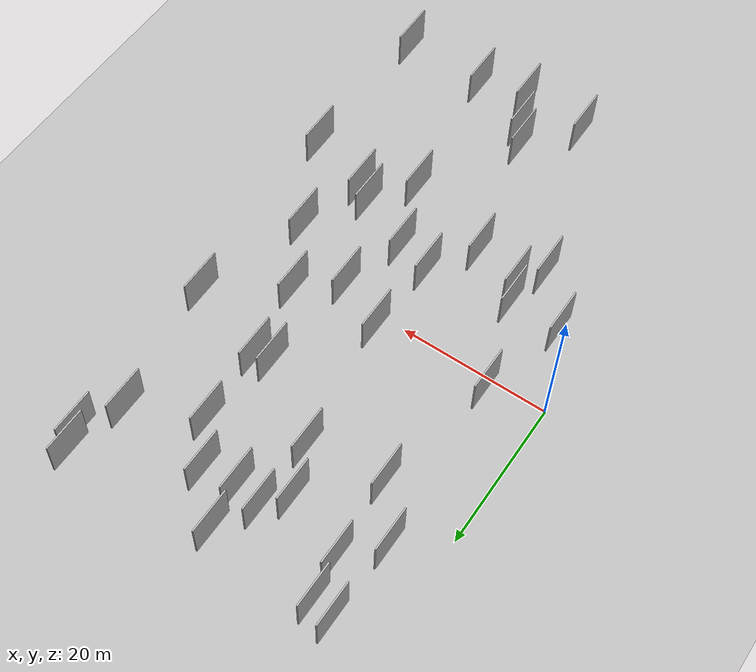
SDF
<?xml version="1.0" encoding="utf-8"?>

<sdf version="1.6">

   <world name="default">

      <gui fullscreen="0">

         <camera name="user_camera">

            <pose>-15 0 4.57585 0 0 0</pose>

            <view_controller>orbit</view_controller>

         </camera>

      </gui>

      <scene>

         <sky>

           <clouds>

             <speed>12</speed>

           </clouds>

         </sky>

         <ambient>0.4 0.4 0.4 1</ambient>

         <background>0.7 0.7 0.7 1</background>

         <shadows>1</shadows>

      </scene>

      <gravity>0 0 -9.8066</gravity>

      <magnetic_field>6e-06 2.3e-05 -4.2e-05</magnetic_field>

      <physics default="0" name="default_physics" type="ode">

         <ode>

            <solver>

               <type>quick</type>

               <iters>10</iters>

               <sor>1.0</sor>

               <use_dynamic_moi_rescaling>0</use_dynamic_moi_rescaling>

            </solver>

            <constraints>

               <cfm>0</cfm>

               <erp>0.2</erp>

               <contact_max_correcting_vel>100</contact_max_correcting_vel>

               <contact_surface_layer>0.001</contact_surface_layer>

            </constraints>

         </ode>

         <max_step_size>0.004</max_step_size>

         <real_time_factor>1</real_time_factor>

         <real_time_update_rate>250</real_time_update_rate>

      </physics>

      <light name="sun" type="directional">

         <cast_shadows>1</cast_shadows>

         <pose>0 0 10 0 0 0</pose>

         <diffuse>0.8 0.8 0.8 1</diffuse>

         <specular>0.2 0.2 0.2 1</specular>

         <attenuation>

            <range>1000</range>

            <constant>0.9</constant>

            <linear>0.01</linear>

            <quadratic>0.001</quadratic>

         </attenuation>

         <direction>-0.5 0.1 -0.9</direction>

      </light>

      <include>

         <name>ground_plane_1</name>

         <uri>model://HANNAS_ground_plane</uri>

         <pose>0 0 0  0 0 0</pose>

      </include>

      <include>

         <name>ground_plane_2</name>

         <uri>model://HANNAS_ground_plane</uri>

         <pose>100 0 0  0 0 0</pose>

      </include>

      <model name="HANNAS_wall_1">

         <static>1</static>

         <pose frame="">22.6917 -31.9498 0.0 0.000000 0.000000 1.570796</pose>

         <link name="link">

            <pose frame="">0 0 3.00 0 0 0</pose>

            <collision name="collision">

               <geometry>

                  <box>

                     <size>6.00 0.2 6.00</size>

                  </box>

               </geometry>

               <max_contacts>10</max_contacts>

               <surface>

                  <contact>

                     <ode/>

                  </contact>

                  <bounce/>

                  <friction>

                     <torsional>

                        <ode/>

                     </torsional>

                     <ode/>

                  </friction>

               </surface>

            </collision>

            <visual name="visual">

               <cast_shadows>0</cast_shadows>

               <geometry>

                  <box>

                     <size>6.00 0.2 6.00</size>

                  </box>

               </geometry>

               <material>

                  <script>

                     <uri>model://HANNAS_wall/materials/scripts</uri>

                     <uri>model://HANNAS_wall/materials/textures</uri>

                     <name>vrc/HANNAS_wall</name>

                  </script>

               </material>

            </visual>

            <self_collide>0</self_collide>

            <enable_wind>0</enable_wind>

            <kinematic>0</kinematic>

         </link>

      </model>

      <model name="HANNAS_wall_2">

         <static>1</static>

         <pose frame="">20.2446 29.4621 0.0 0.000000 0.000000 1.570796</pose>

         <link name="link">

            <pose frame="">0 0 3.00 0 0 0</pose>

            <collision name="collision">

               <geometry>

                  <box>

                     <size>6.00 0.2 6.00</size>

                  </box>

               </geometry>

               <max_contacts>10</max_contacts>

               <surface>

                  <contact>

                     <ode/>

                  </contact>

                  <bounce/>

                  <friction>

                     <torsional>

                        <ode/>

                     </torsional>

                     <ode/>

                  </friction>

               </surface>

            </collision>

            <visual name="visual">

               <cast_shadows>0</cast_shadows>

               <geometry>

                  <box>

                     <size>6.00 0.2 6.00</size>

                  </box>

               </geometry>

               <material>

                  <script>

                     <uri>model://HANNAS_wall/materials/scripts</uri>

                     <uri>model://HANNAS_wall/materials/textures</uri>

                     <name>vrc/HANNAS_wall</name>

                  </script>

               </material>

            </visual>

            <self_collide>0</self_collide>

            <enable_wind>0</enable_wind>

            <kinematic>0</kinematic>

         </link>

      </model>

      <model name="HANNAS_wall_3">

         <static>1</static>

         <pose frame="">44.1702 -38.2884 0.0 0.000000 0.000000 1.570796</pose>

         <link name="link">

            <pose frame="">0 0 3.00 0 0 0</pose>

            <collision name="collision">

               <geometry>

                  <box>

                     <size>6.00 0.2 6.00</size>

                  </box>

               </geometry>

               <max_contacts>10</max_contacts>

               <surface>

                  <contact>

                     <ode/>

                  </contact>

                  <bounce/>

                  <friction>

                     <torsional>

                        <ode/>

                     </torsional>

                     <ode/>

                  </friction>

               </surface>

            </collision>

            <visual name="visual">

               <cast_shadows>0</cast_shadows>

               <geometry>

                  <box>

                     <size>6.00 0.2 6.00</size>

                  </box>

               </geometry>

               <material>

                  <script>

                     <uri>model://HANNAS_wall/materials/scripts</uri>

                     <uri>model://HANNAS_wall/materials/textures</uri>

                     <name>vrc/HANNAS_wall</name>

                  </script>

               </material>

            </visual>

            <self_collide>0</self_collide>

            <enable_wind>0</enable_wind>

            <kinematic>0</kinematic>

         </link>

      </model>

      <model name="HANNAS_wall_4">

         <static>1</static>

         <pose frame="">43.6332 33.7527 0.0 0.000000 0.000000 1.570796</pose>

         <link name="link">

            <pose frame="">0 0 3.00 0 0 0</pose>

            <collision name="collision">

               <geometry>

                  <box>

                     <size>6.00 0.2 6.00</size>

                  </box>

               </geometry>

               <max_contacts>10</max_contacts>

               <surface>

                  <contact>

                     <ode/>

                  </contact>

                  <bounce/>

                  <friction>

                     <torsional>

                        <ode/>

                     </torsional>

                     <ode/>

                  </friction>

               </surface>

            </collision>

            <visual name="visual">

               <cast_shadows>0</cast_shadows>

               <geometry>

                  <box>

                     <size>6.00 0.2 6.00</size>

                  </box>

               </geometry>

               <material>

                  <script>

                     <uri>model://HANNAS_wall/materials/scripts</uri>

                     <uri>model://HANNAS_wall/materials/textures</uri>

                     <name>vrc/HANNAS_wall</name>

                  </script>

               </material>

            </visual>

            <self_collide>0</self_collide>

            <enable_wind>0</enable_wind>

            <kinematic>0</kinematic>

         </link>

      </model>

      <model name="HANNAS_wall_5">

         <static>1</static>

         <pose frame="">29.2713 -0.7865 0.0 0.000000 0.000000 1.570796</pose>

         <link name="link">

            <pose frame="">0 0 3.00 0 0 0</pose>

            <collision name="collision">

               <geometry>

                  <box>

                     <size>6.00 0.2 6.00</size>

                  </box>

               </geometry>

               <max_contacts>10</max_contacts>

               <surface>

                  <contact>

                     <ode/>

                  </contact>

                  <bounce/>

                  <friction>

                     <torsional>

                        <ode/>

                     </torsional>

                     <ode/>

                  </friction>

               </surface>

            </collision>

            <visual name="visual">

               <cast_shadows>0</cast_shadows>

               <geometry>

                  <box>

                     <size>6.00 0.2 6.00</size>

                  </box>

               </geometry>

               <material>

                  <script>

                     <uri>model://HANNAS_wall/materials/scripts</uri>

                     <uri>model://HANNAS_wall/materials/textures</uri>

                     <name>vrc/HANNAS_wall</name>

                  </script>

               </material>

            </visual>

            <self_collide>0</self_collide>

            <enable_wind>0</enable_wind>

            <kinematic>0</kinematic>

         </link>

      </model>

      <model name="HANNAS_wall_6">

         <static>1</static>

         <pose frame="">22.1243 -8.2545 0.0 0.000000 0.000000 1.570796</pose>

         <link name="link">

            <pose frame="">0 0 3.00 0 0 0</pose>

            <collision name="collision">

               <geometry>

                  <box>

                     <size>6.00 0.2 6.00</size>

                  </box>

               </geometry>

               <max_contacts>10</max_contacts>

               <surface>

                  <contact>

                     <ode/>

                  </contact>

                  <bounce/>

                  <friction>

                     <torsional>

                        <ode/>

                     </torsional>

                     <ode/>

                  </friction>

               </surface>

            </collision>

            <visual name="visual">

               <cast_shadows>0</cast_shadows>

               <geometry>

                  <box>

                     <size>6.00 0.2 6.00</size>

                  </box>

               </geometry>

               <material>

                  <script>

                     <uri>model://HANNAS_wall/materials/scripts</uri>

                     <uri>model://HANNAS_wall/materials/textures</uri>

                     <name>vrc/HANNAS_wall</name>

                  </script>

               </material>

            </visual>

            <self_collide>0</self_collide>

            <enable_wind>0</enable_wind>

            <kinematic>0</kinematic>

         </link>

      </model>

      <model name="HANNAS_wall_7">

         <static>1</static>

         <pose frame="">9.5322 29.6135 0.0 0.000000 0.000000 1.570796</pose>

         <link name="link">

            <pose frame="">0 0 3.00 0 0 0</pose>

            <collision name="collision">

               <geometry>

                  <box>

                     <size>6.00 0.2 6.00</size>

                  </box>

               </geometry>

               <max_contacts>10</max_contacts>

               <surface>

                  <contact>

                     <ode/>

                  </contact>

                  <bounce/>

                  <friction>

                     <torsional>

                        <ode/>

                     </torsional>

                     <ode/>

                  </friction>

               </surface>

            </collision>

            <visual name="visual">

               <cast_shadows>0</cast_shadows>

               <geometry>

                  <box>

                     <size>6.00 0.2 6.00</size>

                  </box>

               </geometry>

               <material>

                  <script>

                     <uri>model://HANNAS_wall/materials/scripts</uri>

                     <uri>model://HANNAS_wall/materials/textures</uri>

                     <name>vrc/HANNAS_wall</name>

                  </script>

               </material>

            </visual>

            <self_collide>0</self_collide>

            <enable_wind>0</enable_wind>

            <kinematic>0</kinematic>

         </link>

      </model>

      <model name="HANNAS_wall_8">

         <static>1</static>

         <pose frame="">23.8840 28.7918 0.0 0.000000 0.000000 1.570796</pose>

         <link name="link">

            <pose frame="">0 0 3.00 0 0 0</pose>

            <collision name="collision">

               <geometry>

                  <box>

                     <size>6.00 0.2 6.00</size>

                  </box>

               </geometry>

               <max_contacts>10</max_contacts>

               <surface>

                  <contact>

                     <ode/>

                  </contact>

                  <bounce/>

                  <friction>

                     <torsional>

                        <ode/>

                     </torsional>

                     <ode/>

                  </friction>

               </surface>

            </collision>

            <visual name="visual">

               <cast_shadows>0</cast_shadows>

               <geometry>

                  <box>

                     <size>6.00 0.2 6.00</size>

                  </box>

               </geometry>

               <material>

                  <script>

                     <uri>model://HANNAS_wall/materials/scripts</uri>

                     <uri>model://HANNAS_wall/materials/textures</uri>

                     <name>vrc/HANNAS_wall</name>

                  </script>

               </material>

            </visual>

            <self_collide>0</self_collide>

            <enable_wind>0</enable_wind>

            <kinematic>0</kinematic>

         </link>

      </model>

      <model name="HANNAS_wall_9">

         <static>1</static>

         <pose frame="">34.3132 3.4054 0.0 0.000000 0.000000 1.570796</pose>

         <link name="link">

            <pose frame="">0 0 3.00 0 0 0</pose>

            <collision name="collision">

               <geometry>

                  <box>

                     <size>6.00 0.2 6.00</size>

                  </box>

               </geometry>

               <max_contacts>10</max_contacts>

               <surface>

                  <contact>

                     <ode/>

                  </contact>

                  <bounce/>

                  <friction>

                     <torsional>

                        <ode/>

                     </torsional>

                     <ode/>

                  </friction>

               </surface>

            </collision>

            <visual name="visual">

               <cast_shadows>0</cast_shadows>

               <geometry>

                  <box>

                     <size>6.00 0.2 6.00</size>

                  </box>

               </geometry>

               <material>

                  <script>

                     <uri>model://HANNAS_wall/materials/scripts</uri>

                     <uri>model://HANNAS_wall/materials/textures</uri>

                     <name>vrc/HANNAS_wall</name>

                  </script>

               </material>

            </visual>

            <self_collide>0</self_collide>

            <enable_wind>0</enable_wind>

            <kinematic>0</kinematic>

         </link>

      </model>

      <model name="HANNAS_wall_10">

         <static>1</static>

         <pose frame="">30.1226 -18.4739 0.0 0.000000 0.000000 1.570796</pose>

         <link name="link">

            <pose frame="">0 0 3.00 0 0 0</pose>

            <collision name="collision">

               <geometry>

                  <box>

                     <size>6.00 0.2 6.00</size>

                  </box>

               </geometry>

               <max_contacts>10</max_contacts>

               <surface>

                  <contact>

                     <ode/>

                  </contact>

                  <bounce/>

                  <friction>

                     <torsional>

                        <ode/>

                     </torsional>

                     <ode/>

                  </friction>

               </surface>

            </collision>

            <visual name="visual">

               <cast_shadows>0</cast_shadows>

               <geometry>

                  <box>

                     <size>6.00 0.2 6.00</size>

                  </box>

               </geometry>

               <material>

                  <script>

                     <uri>model://HANNAS_wall/materials/scripts</uri>

                     <uri>model://HANNAS_wall/materials/textures</uri>

                     <name>vrc/HANNAS_wall</name>

                  </script>

               </material>

            </visual>

            <self_collide>0</self_collide>

            <enable_wind>0</enable_wind>

            <kinematic>0</kinematic>

         </link>

      </model>

      <model name="HANNAS_wall_11">

         <static>1</static>

         <pose frame="">28.4479 29.3044 0.0 0.000000 0.000000 1.570796</pose>

         <link name="link">

            <pose frame="">0 0 3.00 0 0 0</pose>

            <collision name="collision">

               <geometry>

                  <box>

                     <size>6.00 0.2 6.00</size>

                  </box>

               </geometry>

               <max_contacts>10</max_contacts>

               <surface>

                  <contact>

                     <ode/>

                  </contact>

                  <bounce/>

                  <friction>

                     <torsional>

                        <ode/>

                     </torsional>

                     <ode/>

                  </friction>

               </surface>

            </collision>

            <visual name="visual">

               <cast_shadows>0</cast_shadows>

               <geometry>

                  <box>

                     <size>6.00 0.2 6.00</size>

                  </box>

               </geometry>

               <material>

                  <script>

                     <uri>model://HANNAS_wall/materials/scripts</uri>

                     <uri>model://HANNAS_wall/materials/textures</uri>

                     <name>vrc/HANNAS_wall</name>

                  </script>

               </material>

            </visual>

            <self_collide>0</self_collide>

            <enable_wind>0</enable_wind>

            <kinematic>0</kinematic>

         </link>

      </model>

      <model name="HANNAS_wall_12">

         <static>1</static>

         <pose frame="">42.7984 36.0896 0.0 0.000000 0.000000 1.570796</pose>

         <link name="link">

            <pose frame="">0 0 3.00 0 0 0</pose>

            <collision name="collision">

               <geometry>

                  <box>

                     <size>6.00 0.2 6.00</size>

                  </box>

               </geometry>

               <max_contacts>10</max_contacts>

               <surface>

                  <contact>

                     <ode/>

                  </contact>

                  <bounce/>

                  <friction>

                     <torsional>

                        <ode/>

                     </torsional>

                     <ode/>

                  </friction>

               </surface>

            </collision>

            <visual name="visual">

               <cast_shadows>0</cast_shadows>

               <geometry>

                  <box>

                     <size>6.00 0.2 6.00</size>

                  </box>

               </geometry>

               <material>

                  <script>

                     <uri>model://HANNAS_wall/materials/scripts</uri>

                     <uri>model://HANNAS_wall/materials/textures</uri>

                     <name>vrc/HANNAS_wall</name>

                  </script>

               </material>

            </visual>

            <self_collide>0</self_collide>

            <enable_wind>0</enable_wind>

            <kinematic>0</kinematic>

         </link>

      </model>

      <model name="HANNAS_wall_13">

         <static>1</static>

         <pose frame="">5.8683 35.6910 0.0 0.000000 0.000000 1.570796</pose>

         <link name="link">

            <pose frame="">0 0 3.00 0 0 0</pose>

            <collision name="collision">

               <geometry>

                  <box>

                     <size>6.00 0.2 6.00</size>

                  </box>

               </geometry>

               <max_contacts>10</max_contacts>

               <surface>

                  <contact>

                     <ode/>

                  </contact>

                  <bounce/>

                  <friction>

                     <torsional>

                        <ode/>

                     </torsional>

                     <ode/>

                  </friction>

               </surface>

            </collision>

            <visual name="visual">

               <cast_shadows>0</cast_shadows>

               <geometry>

                  <box>

                     <size>6.00 0.2 6.00</size>

                  </box>

               </geometry>

               <material>

                  <script>

                     <uri>model://HANNAS_wall/materials/scripts</uri>

                     <uri>model://HANNAS_wall/materials/textures</uri>

                     <name>vrc/HANNAS_wall</name>

                  </script>

               </material>

            </visual>

            <self_collide>0</self_collide>

            <enable_wind>0</enable_wind>

            <kinematic>0</kinematic>

         </link>

      </model>

      <model name="HANNAS_wall_14">

         <static>1</static>

         <pose frame="">24.3552 -34.5578 0.0 0.000000 0.000000 1.570796</pose>

         <link name="link">

            <pose frame="">0 0 3.00 0 0 0</pose>

            <collision name="collision">

               <geometry>

                  <box>

                     <size>6.00 0.2 6.00</size>

                  </box>

               </geometry>

               <max_contacts>10</max_contacts>

               <surface>

                  <contact>

                     <ode/>

                  </contact>

                  <bounce/>

                  <friction>

                     <torsional>

                        <ode/>

                     </torsional>

                     <ode/>

                  </friction>

               </surface>

            </collision>

            <visual name="visual">

               <cast_shadows>0</cast_shadows>

               <geometry>

                  <box>

                     <size>6.00 0.2 6.00</size>

                  </box>

               </geometry>

               <material>

                  <script>

                     <uri>model://HANNAS_wall/materials/scripts</uri>

                     <uri>model://HANNAS_wall/materials/textures</uri>

                     <name>vrc/HANNAS_wall</name>

                  </script>

               </material>

            </visual>

            <self_collide>0</self_collide>

            <enable_wind>0</enable_wind>

            <kinematic>0</kinematic>

         </link>

      </model>

      <model name="HANNAS_wall_15">

         <static>1</static>

         <pose frame="">9.6066 -16.3142 0.0 0.000000 0.000000 1.570796</pose>

         <link name="link">

            <pose frame="">0 0 3.00 0 0 0</pose>

            <collision name="collision">

               <geometry>

                  <box>

                     <size>6.00 0.2 6.00</size>

                  </box>

               </geometry>

               <max_contacts>10</max_contacts>

               <surface>

                  <contact>

                     <ode/>

                  </contact>

                  <bounce/>

                  <friction>

                     <torsional>

                        <ode/>

                     </torsional>

                     <ode/>

                  </friction>

               </surface>

            </collision>

            <visual name="visual">

               <cast_shadows>0</cast_shadows>

               <geometry>

                  <box>

                     <size>6.00 0.2 6.00</size>

                  </box>

               </geometry>

               <material>

                  <script>

                     <uri>model://HANNAS_wall/materials/scripts</uri>

                     <uri>model://HANNAS_wall/materials/textures</uri>

                     <name>vrc/HANNAS_wall</name>

                  </script>

               </material>

            </visual>

            <self_collide>0</self_collide>

            <enable_wind>0</enable_wind>

            <kinematic>0</kinematic>

         </link>

      </model>

      <model name="HANNAS_wall_16">

         <static>1</static>

         <pose frame="">10.2562 18.8156 0.0 0.000000 0.000000 1.570796</pose>

         <link name="link">

            <pose frame="">0 0 3.00 0 0 0</pose>

            <collision name="collision">

               <geometry>

                  <box>

                     <size>6.00 0.2 6.00</size>

                  </box>

               </geometry>

               <max_contacts>10</max_contacts>

               <surface>

                  <contact>

                     <ode/>

                  </contact>

                  <bounce/>

                  <friction>

                     <torsional>

                        <ode/>

                     </torsional>

                     <ode/>

                  </friction>

               </surface>

            </collision>

            <visual name="visual">

               <cast_shadows>0</cast_shadows>

               <geometry>

                  <box>

                     <size>6.00 0.2 6.00</size>

                  </box>

               </geometry>

               <material>

                  <script>

                     <uri>model://HANNAS_wall/materials/scripts</uri>

                     <uri>model://HANNAS_wall/materials/textures</uri>

                     <name>vrc/HANNAS_wall</name>

                  </script>

               </material>

            </visual>

            <self_collide>0</self_collide>

            <enable_wind>0</enable_wind>

            <kinematic>0</kinematic>

         </link>

      </model>

      <model name="HANNAS_wall_17">

         <static>1</static>

         <pose frame="">40.8270 28.1139 0.0 0.000000 0.000000 1.570796</pose>

         <link name="link">

            <pose frame="">0 0 3.00 0 0 0</pose>

            <collision name="collision">

               <geometry>

                  <box>

                     <size>6.00 0.2 6.00</size>

                  </box>

               </geometry>

               <max_contacts>10</max_contacts>

               <surface>

                  <contact>

                     <ode/>

                  </contact>

                  <bounce/>

                  <friction>

                     <torsional>

                        <ode/>

                     </torsional>

                     <ode/>

                  </friction>

               </surface>

            </collision>

            <visual name="visual">

               <cast_shadows>0</cast_shadows>

               <geometry>

                  <box>

                     <size>6.00 0.2 6.00</size>

                  </box>

               </geometry>

               <material>

                  <script>

                     <uri>model://HANNAS_wall/materials/scripts</uri>

                     <uri>model://HANNAS_wall/materials/textures</uri>

                     <name>vrc/HANNAS_wall</name>

                  </script>

               </material>

            </visual>

            <self_collide>0</self_collide>

            <enable_wind>0</enable_wind>

            <kinematic>0</kinematic>

         </link>

      </model>

      <model name="HANNAS_wall_18">

         <static>1</static>

         <pose frame="">31.8973 23.8797 0.0 0.000000 0.000000 1.570796</pose>

         <link name="link">

            <pose frame="">0 0 3.00 0 0 0</pose>

            <collision name="collision">

               <geometry>

                  <box>

                     <size>6.00 0.2 6.00</size>

                  </box>

               </geometry>

               <max_contacts>10</max_contacts>

               <surface>

                  <contact>

                     <ode/>

                  </contact>

                  <bounce/>

                  <friction>

                     <torsional>

                        <ode/>

                     </torsional>

                     <ode/>

                  </friction>

               </surface>

            </collision>

            <visual name="visual">

               <cast_shadows>0</cast_shadows>

               <geometry>

                  <box>

                     <size>6.00 0.2 6.00</size>

                  </box>

               </geometry>

               <material>

                  <script>

                     <uri>model://HANNAS_wall/materials/scripts</uri>

                     <uri>model://HANNAS_wall/materials/textures</uri>

                     <name>vrc/HANNAS_wall</name>

                  </script>

               </material>

            </visual>

            <self_collide>0</self_collide>

            <enable_wind>0</enable_wind>

            <kinematic>0</kinematic>

         </link>

      </model>

      <model name="HANNAS_wall_19">

         <static>1</static>

         <pose frame="">7.3207 1.8135 0.0 0.000000 0.000000 1.570796</pose>

         <link name="link">

            <pose frame="">0 0 3.00 0 0 0</pose>

            <collision name="collision">

               <geometry>

                  <box>

                     <size>6.00 0.2 6.00</size>

                  </box>

               </geometry>

               <max_contacts>10</max_contacts>

               <surface>

                  <contact>

                     <ode/>

                  </contact>

                  <bounce/>

                  <friction>

                     <torsional>

                        <ode/>

                     </torsional>

                     <ode/>

                  </friction>

               </surface>

            </collision>

            <visual name="visual">

               <cast_shadows>0</cast_shadows>

               <geometry>

                  <box>

                     <size>6.00 0.2 6.00</size>

                  </box>

               </geometry>

               <material>

                  <script>

                     <uri>model://HANNAS_wall/materials/scripts</uri>

                     <uri>model://HANNAS_wall/materials/textures</uri>

                     <name>vrc/HANNAS_wall</name>

                  </script>

               </material>

            </visual>

            <self_collide>0</self_collide>

            <enable_wind>0</enable_wind>

            <kinematic>0</kinematic>

         </link>

      </model>

      <model name="HANNAS_wall_20">

         <static>1</static>

         <pose frame="">5.5236 25.0917 0.0 0.000000 0.000000 1.570796</pose>

         <link name="link">

            <pose frame="">0 0 3.00 0 0 0</pose>

            <collision name="collision">

               <geometry>

                  <box>

                     <size>6.00 0.2 6.00</size>

                  </box>

               </geometry>

               <max_contacts>10</max_contacts>

               <surface>

                  <contact>

                     <ode/>

                  </contact>

                  <bounce/>

                  <friction>

                     <torsional>

                        <ode/>

                     </torsional>

                     <ode/>

                  </friction>

               </surface>

            </collision>

            <visual name="visual">

               <cast_shadows>0</cast_shadows>

               <geometry>

                  <box>

                     <size>6.00 0.2 6.00</size>

                  </box>

               </geometry>

               <material>

                  <script>

                     <uri>model://HANNAS_wall/materials/scripts</uri>

                     <uri>model://HANNAS_wall/materials/textures</uri>

                     <name>vrc/HANNAS_wall</name>

                  </script>

               </material>

            </visual>

            <self_collide>0</self_collide>

            <enable_wind>0</enable_wind>

            <kinematic>0</kinematic>

         </link>

      </model>

      <model name="HANNAS_wall_21">

         <static>1</static>

         <pose frame="">17.8645 26.3139 0.0 0.000000 0.000000 1.570796</pose>

         <link name="link">

            <pose frame="">0 0 3.00 0 0 0</pose>

            <collision name="collision">

               <geometry>

                  <box>

                     <size>6.00 0.2 6.00</size>

                  </box>

               </geometry>

               <max_contacts>10</max_contacts>

               <surface>

                  <contact>

                     <ode/>

                  </contact>

                  <bounce/>

                  <friction>

                     <torsional>

                        <ode/>

                     </torsional>

                     <ode/>

                  </friction>

               </surface>

            </collision>

            <visual name="visual">

               <cast_shadows>0</cast_shadows>

               <geometry>

                  <box>

                     <size>6.00 0.2 6.00</size>

                  </box>

               </geometry>

               <material>

                  <script>

                     <uri>model://HANNAS_wall/materials/scripts</uri>

                     <uri>model://HANNAS_wall/materials/textures</uri>

                     <name>vrc/HANNAS_wall</name>

                  </script>

               </material>

            </visual>

            <self_collide>0</self_collide>

            <enable_wind>0</enable_wind>

            <kinematic>0</kinematic>

         </link>

      </model>

      <model name="HANNAS_wall_22">

         <static>1</static>

         <pose frame="">34.1734 -13.0165 0.0 0.000000 0.000000 1.570796</pose>

         <link name="link">

            <pose frame="">0 0 3.00 0 0 0</pose>

            <collision name="collision">

               <geometry>

                  <box>

                     <size>6.00 0.2 6.00</size>

                  </box>

               </geometry>

               <max_contacts>10</max_contacts>

               <surface>

                  <contact>

                     <ode/>

                  </contact>

                  <bounce/>

                  <friction>

                     <torsional>

                        <ode/>

                     </torsional>

                     <ode/>

                  </friction>

               </surface>

            </collision>

            <visual name="visual">

               <cast_shadows>0</cast_shadows>

               <geometry>

                  <box>

                     <size>6.00 0.2 6.00</size>

                  </box>

               </geometry>

               <material>

                  <script>

                     <uri>model://HANNAS_wall/materials/scripts</uri>

                     <uri>model://HANNAS_wall/materials/textures</uri>

                     <name>vrc/HANNAS_wall</name>

                  </script>

               </material>

            </visual>

            <self_collide>0</self_collide>

            <enable_wind>0</enable_wind>

            <kinematic>0</kinematic>

         </link>

      </model>

      <model name="HANNAS_wall_23">

         <static>1</static>

         <pose frame="">12.0930 -12.8128 0.0 0.000000 0.000000 1.570796</pose>

         <link name="link">

            <pose frame="">0 0 3.00 0 0 0</pose>

            <collision name="collision">

               <geometry>

                  <box>

                     <size>6.00 0.2 6.00</size>

                  </box>

               </geometry>

               <max_contacts>10</max_contacts>

               <surface>

                  <contact>

                     <ode/>

                  </contact>

                  <bounce/>

                  <friction>

                     <torsional>

                        <ode/>

                     </torsional>

                     <ode/>

                  </friction>

               </surface>

            </collision>

            <visual name="visual">

               <cast_shadows>0</cast_shadows>

               <geometry>

                  <box>

                     <size>6.00 0.2 6.00</size>

                  </box>

               </geometry>

               <material>

                  <script>

                     <uri>model://HANNAS_wall/materials/scripts</uri>

                     <uri>model://HANNAS_wall/materials/textures</uri>

                     <name>vrc/HANNAS_wall</name>

                  </script>

               </material>

            </visual>

            <self_collide>0</self_collide>

            <enable_wind>0</enable_wind>

            <kinematic>0</kinematic>

         </link>

      </model>

      <model name="HANNAS_wall_24">

         <static>1</static>

         <pose frame="">22.7495 2.2998 0.0 0.000000 0.000000 1.570796</pose>

         <link name="link">

            <pose frame="">0 0 3.00 0 0 0</pose>

            <collision name="collision">

               <geometry>

                  <box>

                     <size>6.00 0.2 6.00</size>

                  </box>

               </geometry>

               <max_contacts>10</max_contacts>

               <surface>

                  <contact>

                     <ode/>

                  </contact>

                  <bounce/>

                  <friction>

                     <torsional>

                        <ode/>

                     </torsional>

                     <ode/>

                  </friction>

               </surface>

            </collision>

            <visual name="visual">

               <cast_shadows>0</cast_shadows>

               <geometry>

                  <box>

                     <size>6.00 0.2 6.00</size>

                  </box>

               </geometry>

               <material>

                  <script>

                     <uri>model://HANNAS_wall/materials/scripts</uri>

                     <uri>model://HANNAS_wall/materials/textures</uri>

                     <name>vrc/HANNAS_wall</name>

                  </script>

               </material>

            </visual>

            <self_collide>0</self_collide>

            <enable_wind>0</enable_wind>

            <kinematic>0</kinematic>

         </link>

      </model>

      <model name="HANNAS_wall_25">

         <static>1</static>

         <pose frame="">20.2519 20.1538 0.0 0.000000 0.000000 1.570796</pose>

         <link name="link">

            <pose frame="">0 0 3.00 0 0 0</pose>

            <collision name="collision">

               <geometry>

                  <box>

                     <size>6.00 0.2 6.00</size>

                  </box>

               </geometry>

               <max_contacts>10</max_contacts>

               <surface>

                  <contact>

                     <ode/>

                  </contact>

                  <bounce/>

                  <friction>

                     <torsional>

                        <ode/>

                     </torsional>

                     <ode/>

                  </friction>

               </surface>

            </collision>

            <visual name="visual">

               <cast_shadows>0</cast_shadows>

               <geometry>

                  <box>

                     <size>6.00 0.2 6.00</size>

                  </box>

               </geometry>

               <material>

                  <script>

                     <uri>model://HANNAS_wall/materials/scripts</uri>

                     <uri>model://HANNAS_wall/materials/textures</uri>

                     <name>vrc/HANNAS_wall</name>

                  </script>

               </material>

            </visual>

            <self_collide>0</self_collide>

            <enable_wind>0</enable_wind>

            <kinematic>0</kinematic>

         </link>

      </model>

      <model name="HANNAS_wall_26">

         <static>1</static>

         <pose frame="">4.1584 -10.0280 0.0 0.000000 0.000000 1.570796</pose>

         <link name="link">

            <pose frame="">0 0 3.00 0 0 0</pose>

            <collision name="collision">

               <geometry>

                  <box>

                     <size>6.00 0.2 6.00</size>

                  </box>

               </geometry>

               <max_contacts>10</max_contacts>

               <surface>

                  <contact>

                     <ode/>

                  </contact>

                  <bounce/>

                  <friction>

                     <torsional>

                        <ode/>

                     </torsional>

                     <ode/>

                  </friction>

               </surface>

            </collision>

            <visual name="visual">

               <cast_shadows>0</cast_shadows>

               <geometry>

                  <box>

                     <size>6.00 0.2 6.00</size>

                  </box>

               </geometry>

               <material>

                  <script>

                     <uri>model://HANNAS_wall/materials/scripts</uri>

                     <uri>model://HANNAS_wall/materials/textures</uri>

                     <name>vrc/HANNAS_wall</name>

                  </script>

               </material>

            </visual>

            <self_collide>0</self_collide>

            <enable_wind>0</enable_wind>

            <kinematic>0</kinematic>

         </link>

      </model>

      <model name="HANNAS_wall_27">

         <static>1</static>

         <pose frame="">11.0273 -10.2414 0.0 0.000000 0.000000 1.570796</pose>

         <link name="link">

            <pose frame="">0 0 3.00 0 0 0</pose>

            <collision name="collision">

               <geometry>

                  <box>

                     <size>6.00 0.2 6.00</size>

                  </box>

               </geometry>

               <max_contacts>10</max_contacts>

               <surface>

                  <contact>

                     <ode/>

                  </contact>

                  <bounce/>

                  <friction>

                     <torsional>

                        <ode/>

                     </torsional>

                     <ode/>

                  </friction>

               </surface>

            </collision>

            <visual name="visual">

               <cast_shadows>0</cast_shadows>

               <geometry>

                  <box>

                     <size>6.00 0.2 6.00</size>

                  </box>

               </geometry>

               <material>

                  <script>

                     <uri>model://HANNAS_wall/materials/scripts</uri>

                     <uri>model://HANNAS_wall/materials/textures</uri>

                     <name>vrc/HANNAS_wall</name>

                  </script>

               </material>

            </visual>

            <self_collide>0</self_collide>

            <enable_wind>0</enable_wind>

            <kinematic>0</kinematic>

         </link>

      </model>

      <model name="HANNAS_wall_28">

         <static>1</static>

         <pose frame="">17.2265 -38.5190 0.0 0.000000 0.000000 1.570796</pose>

         <link name="link">

            <pose frame="">0 0 3.00 0 0 0</pose>

            <collision name="collision">

               <geometry>

                  <box>

                     <size>6.00 0.2 6.00</size>

                  </box>

               </geometry>

               <max_contacts>10</max_contacts>

               <surface>

                  <contact>

                     <ode/>

                  </contact>

                  <bounce/>

                  <friction>

                     <torsional>

                        <ode/>

                     </torsional>

                     <ode/>

                  </friction>

               </surface>

            </collision>

            <visual name="visual">

               <cast_shadows>0</cast_shadows>

               <geometry>

                  <box>

                     <size>6.00 0.2 6.00</size>

                  </box>

               </geometry>

               <material>

                  <script>

                     <uri>model://HANNAS_wall/materials/scripts</uri>

                     <uri>model://HANNAS_wall/materials/textures</uri>

                     <name>vrc/HANNAS_wall</name>

                  </script>

               </material>

            </visual>

            <self_collide>0</self_collide>

            <enable_wind>0</enable_wind>

            <kinematic>0</kinematic>

         </link>

      </model>

      <model name="HANNAS_wall_29">

         <static>1</static>

         <pose frame="">32.4649 13.7870 0.0 0.000000 0.000000 1.570796</pose>

         <link name="link">

            <pose frame="">0 0 3.00 0 0 0</pose>

            <collision name="collision">

               <geometry>

                  <box>

                     <size>6.00 0.2 6.00</size>

                  </box>

               </geometry>

               <max_contacts>10</max_contacts>

               <surface>

                  <contact>

                     <ode/>

                  </contact>

                  <bounce/>

                  <friction>

                     <torsional>

                        <ode/>

                     </torsional>

                     <ode/>

                  </friction>

               </surface>

            </collision>

            <visual name="visual">

               <cast_shadows>0</cast_shadows>

               <geometry>

                  <box>

                     <size>6.00 0.2 6.00</size>

                  </box>

               </geometry>

               <material>

                  <script>

                     <uri>model://HANNAS_wall/materials/scripts</uri>

                     <uri>model://HANNAS_wall/materials/textures</uri>

                     <name>vrc/HANNAS_wall</name>

                  </script>

               </material>

            </visual>

            <self_collide>0</self_collide>

            <enable_wind>0</enable_wind>

            <kinematic>0</kinematic>

         </link>

      </model>

      <model name="HANNAS_wall_30">

         <static>1</static>

         <pose frame="">38.8206 -5.0889 0.0 0.000000 0.000000 1.570796</pose>

         <link name="link">

            <pose frame="">0 0 3.00 0 0 0</pose>

            <collision name="collision">

               <geometry>

                  <box>

                     <size>6.00 0.2 6.00</size>

                  </box>

               </geometry>

               <max_contacts>10</max_contacts>

               <surface>

                  <contact>

                     <ode/>

                  </contact>

                  <bounce/>

                  <friction>

                     <torsional>

                        <ode/>

                     </torsional>

                     <ode/>

                  </friction>

               </surface>

            </collision>

            <visual name="visual">

               <cast_shadows>0</cast_shadows>

               <geometry>

                  <box>

                     <size>6.00 0.2 6.00</size>

                  </box>

               </geometry>

               <material>

                  <script>

                     <uri>model://HANNAS_wall/materials/scripts</uri>

                     <uri>model://HANNAS_wall/materials/textures</uri>

                     <name>vrc/HANNAS_wall</name>

                  </script>

               </material>

            </visual>

            <self_collide>0</self_collide>

            <enable_wind>0</enable_wind>

            <kinematic>0</kinematic>

         </link>

      </model>

      <model name="HANNAS_wall_31">

         <static>1</static>

         <pose frame="">30.3369 13.2092 0.0 0.000000 0.000000 1.570796</pose>

         <link name="link">

            <pose frame="">0 0 3.00 0 0 0</pose>

            <collision name="collision">

               <geometry>

                  <box>

                     <size>6.00 0.2 6.00</size>

                  </box>

               </geometry>

               <max_contacts>10</max_contacts>

               <surface>

                  <contact>

                     <ode/>

                  </contact>

                  <bounce/>

                  <friction>

                     <torsional>

                        <ode/>

                     </torsional>

                     <ode/>

                  </friction>

               </surface>

            </collision>

            <visual name="visual">

               <cast_shadows>0</cast_shadows>

               <geometry>

                  <box>

                     <size>6.00 0.2 6.00</size>

                  </box>

               </geometry>

               <material>

                  <script>

                     <uri>model://HANNAS_wall/materials/scripts</uri>

                     <uri>model://HANNAS_wall/materials/textures</uri>

                     <name>vrc/HANNAS_wall</name>

                  </script>

               </material>

            </visual>

            <self_collide>0</self_collide>

            <enable_wind>0</enable_wind>

            <kinematic>0</kinematic>

         </link>

      </model>

      <model name="HANNAS_wall_32">

         <static>1</static>

         <pose frame="">18.2982 -14.5172 0.0 0.000000 0.000000 1.570796</pose>

         <link name="link">

            <pose frame="">0 0 3.00 0 0 0</pose>

            <collision name="collision">

               <geometry>

                  <box>

                     <size>6.00 0.2 6.00</size>

                  </box>

               </geometry>

               <max_contacts>10</max_contacts>

               <surface>

                  <contact>

                     <ode/>

                  </contact>

                  <bounce/>

                  <friction>

                     <torsional>

                        <ode/>

                     </torsional>

                     <ode/>

                  </friction>

               </surface>

            </collision>

            <visual name="visual">

               <cast_shadows>0</cast_shadows>

               <geometry>

                  <box>

                     <size>6.00 0.2 6.00</size>

                  </box>

               </geometry>

               <material>

                  <script>

                     <uri>model://HANNAS_wall/materials/scripts</uri>

                     <uri>model://HANNAS_wall/materials/textures</uri>

                     <name>vrc/HANNAS_wall</name>

                  </script>

               </material>

            </visual>

            <self_collide>0</self_collide>

            <enable_wind>0</enable_wind>

            <kinematic>0</kinematic>

         </link>

      </model>

      <model name="HANNAS_wall_33">

         <static>1</static>

         <pose frame="">32.6602 -37.8949 0.0 0.000000 0.000000 1.570796</pose>

         <link name="link">

            <pose frame="">0 0 3.00 0 0 0</pose>

            <collision name="collision">

               <geometry>

                  <box>

                     <size>6.00 0.2 6.00</size>

                  </box>

               </geometry>

               <max_contacts>10</max_contacts>

               <surface>

                  <contact>

                     <ode/>

                  </contact>

                  <bounce/>

                  <friction>

                     <torsional>

                        <ode/>

                     </torsional>

                     <ode/>

                  </friction>

               </surface>

            </collision>

            <visual name="visual">

               <cast_shadows>0</cast_shadows>

               <geometry>

                  <box>

                     <size>6.00 0.2 6.00</size>

                  </box>

               </geometry>

               <material>

                  <script>

                     <uri>model://HANNAS_wall/materials/scripts</uri>

                     <uri>model://HANNAS_wall/materials/textures</uri>

                     <name>vrc/HANNAS_wall</name>

                  </script>

               </material>

            </visual>

            <self_collide>0</self_collide>

            <enable_wind>0</enable_wind>

            <kinematic>0</kinematic>

         </link>

      </model>

      <model name="HANNAS_wall_34">

         <static>1</static>

         <pose frame="">43.4166 10.1234 0.0 0.000000 0.000000 1.570796</pose>

         <link name="link">

            <pose frame="">0 0 3.00 0 0 0</pose>

            <collision name="collision">

               <geometry>

                  <box>

                     <size>6.00 0.2 6.00</size>

                  </box>

               </geometry>

               <max_contacts>10</max_contacts>

               <surface>

                  <contact>

                     <ode/>

                  </contact>

                  <bounce/>

                  <friction>

                     <torsional>

                        <ode/>

                     </torsional>

                     <ode/>

                  </friction>

               </surface>

            </collision>

            <visual name="visual">

               <cast_shadows>0</cast_shadows>

               <geometry>

                  <box>

                     <size>6.00 0.2 6.00</size>

                  </box>

               </geometry>

               <material>

                  <script>

                     <uri>model://HANNAS_wall/materials/scripts</uri>

                     <uri>model://HANNAS_wall/materials/textures</uri>

                     <name>vrc/HANNAS_wall</name>

                  </script>

               </material>

            </visual>

            <self_collide>0</self_collide>

            <enable_wind>0</enable_wind>

            <kinematic>0</kinematic>

         </link>

      </model>

      <model name="HANNAS_wall_35">

         <static>1</static>

         <pose frame="">8.8094 35.0810 0.0 0.000000 0.000000 1.570796</pose>

         <link name="link">

            <pose frame="">0 0 3.00 0 0 0</pose>

            <collision name="collision">

               <geometry>

                  <box>

                     <size>6.00 0.2 6.00</size>

                  </box>

               </geometry>

               <max_contacts>10</max_contacts>

               <surface>

                  <contact>

                     <ode/>

                  </contact>

                  <bounce/>

                  <friction>

                     <torsional>

                        <ode/>

                     </torsional>

                     <ode/>

                  </friction>

               </surface>

            </collision>

            <visual name="visual">

               <cast_shadows>0</cast_shadows>

               <geometry>

                  <box>

                     <size>6.00 0.2 6.00</size>

                  </box>

               </geometry>

               <material>

                  <script>

                     <uri>model://HANNAS_wall/materials/scripts</uri>

                     <uri>model://HANNAS_wall/materials/textures</uri>

                     <name>vrc/HANNAS_wall</name>

                  </script>

               </material>

            </visual>

            <self_collide>0</self_collide>

            <enable_wind>0</enable_wind>

            <kinematic>0</kinematic>

         </link>

      </model>

      <model name="HANNAS_wall_36">

         <static>1</static>

         <pose frame="">23.1179 34.6564 0.0 0.000000 0.000000 1.570796</pose>

         <link name="link">

            <pose frame="">0 0 3.00 0 0 0</pose>

            <collision name="collision">

               <geometry>

                  <box>

                     <size>6.00 0.2 6.00</size>

                  </box>

               </geometry>

               <max_contacts>10</max_contacts>

               <surface>

                  <contact>

                     <ode/>

                  </contact>

                  <bounce/>

                  <friction>

                     <torsional>

                        <ode/>

                     </torsional>

                     <ode/>

                  </friction>

               </surface>

            </collision>

            <visual name="visual">

               <cast_shadows>0</cast_shadows>

               <geometry>

                  <box>

                     <size>6.00 0.2 6.00</size>

                  </box>

               </geometry>

               <material>

                  <script>

                     <uri>model://HANNAS_wall/materials/scripts</uri>

                     <uri>model://HANNAS_wall/materials/textures</uri>

                     <name>vrc/HANNAS_wall</name>

                  </script>

               </material>

            </visual>

            <self_collide>0</self_collide>

            <enable_wind>0</enable_wind>

            <kinematic>0</kinematic>

         </link>

      </model>

      <model name="HANNAS_wall_37">

         <static>1</static>

         <pose frame="">44.8496 -17.2511 0.0 0.000000 0.000000 1.570796</pose>

         <link name="link">

            <pose frame="">0 0 3.00 0 0 0</pose>

            <collision name="collision">

               <geometry>

                  <box>

                     <size>6.00 0.2 6.00</size>

                  </box>

               </geometry>

               <max_contacts>10</max_contacts>

               <surface>

                  <contact>

                     <ode/>

                  </contact>

                  <bounce/>

                  <friction>

                     <torsional>

                        <ode/>

                     </torsional>

                     <ode/>

                  </friction>

               </surface>

            </collision>

            <visual name="visual">

               <cast_shadows>0</cast_shadows>

               <geometry>

                  <box>

                     <size>6.00 0.2 6.00</size>

                  </box>

               </geometry>

               <material>

                  <script>

                     <uri>model://HANNAS_wall/materials/scripts</uri>

                     <uri>model://HANNAS_wall/materials/textures</uri>

                     <name>vrc/HANNAS_wall</name>

                  </script>

               </material>

            </visual>

            <self_collide>0</self_collide>

            <enable_wind>0</enable_wind>

            <kinematic>0</kinematic>

         </link>

      </model>

      <model name="HANNAS_wall_38">

         <static>1</static>

         <pose frame="">26.1688 -38.9940 0.0 0.000000 0.000000 1.570796</pose>

         <link name="link">

            <pose frame="">0 0 3.00 0 0 0</pose>

            <collision name="collision">

               <geometry>

                  <box>

                     <size>6.00 0.2 6.00</size>

                  </box>

               </geometry>

               <max_contacts>10</max_contacts>

               <surface>

                  <contact>

                     <ode/>

                  </contact>

                  <bounce/>

                  <friction>

                     <torsional>

                        <ode/>

                     </torsional>

                     <ode/>

                  </friction>

               </surface>

            </collision>

            <visual name="visual">

               <cast_shadows>0</cast_shadows>

               <geometry>

                  <box>

                     <size>6.00 0.2 6.00</size>

                  </box>

               </geometry>

               <material>

                  <script>

                     <uri>model://HANNAS_wall/materials/scripts</uri>

                     <uri>model://HANNAS_wall/materials/textures</uri>

                     <name>vrc/HANNAS_wall</name>

                  </script>

               </material>

            </visual>

            <self_collide>0</self_collide>

            <enable_wind>0</enable_wind>

            <kinematic>0</kinematic>

         </link>

      </model>

      <model name="HANNAS_wall_39">

         <static>1</static>

         <pose frame="">36.2444 -14.3839 0.0 0.000000 0.000000 1.570796</pose>

         <link name="link">

            <pose frame="">0 0 3.00 0 0 0</pose>

            <collision name="collision">

               <geometry>

                  <box>

                     <size>6.00 0.2 6.00</size>

                  </box>

               </geometry>

               <max_contacts>10</max_contacts>

               <surface>

                  <contact>

                     <ode/>

                  </contact>

                  <bounce/>

                  <friction>

                     <torsional>

                        <ode/>

                     </torsional>

                     <ode/>

                  </friction>

               </surface>

            </collision>

            <visual name="visual">

               <cast_shadows>0</cast_shadows>

               <geometry>

                  <box>

                     <size>6.00 0.2 6.00</size>

                  </box>

               </geometry>

               <material>

                  <script>

                     <uri>model://HANNAS_wall/materials/scripts</uri>

                     <uri>model://HANNAS_wall/materials/textures</uri>

                     <name>vrc/HANNAS_wall</name>

                  </script>

               </material>

            </visual>

            <self_collide>0</self_collide>

            <enable_wind>0</enable_wind>

            <kinematic>0</kinematic>

         </link>

      </model>

      <model name="HANNAS_wall_40">

         <static>1</static>

         <pose frame="">26.7996 -9.5902 0.0 0.000000 0.000000 1.570796</pose>

         <link name="link">

            <pose frame="">0 0 3.00 0 0 0</pose>

            <collision name="collision">

               <geometry>

                  <box>

                     <size>6.00 0.2 6.00</size>

                  </box>

               </geometry>

               <max_contacts>10</max_contacts>

               <surface>

                  <contact>

                     <ode/>

                  </contact>

                  <bounce/>

                  <friction>

                     <torsional>

                        <ode/>

                     </torsional>

                     <ode/>

                  </friction>

               </surface>

            </collision>

            <visual name="visual">

               <cast_shadows>0</cast_shadows>

               <geometry>

                  <box>

                     <size>6.00 0.2 6.00</size>

                  </box>

               </geometry>

               <material>

                  <script>

                     <uri>model://HANNAS_wall/materials/scripts</uri>

                     <uri>model://HANNAS_wall/materials/textures</uri>

                     <name>vrc/HANNAS_wall</name>

                  </script>

               </material>

            </visual>

            <self_collide>0</self_collide>

            <enable_wind>0</enable_wind>

            <kinematic>0</kinematic>

         </link>

      </model>

   </world>

</sdf>
